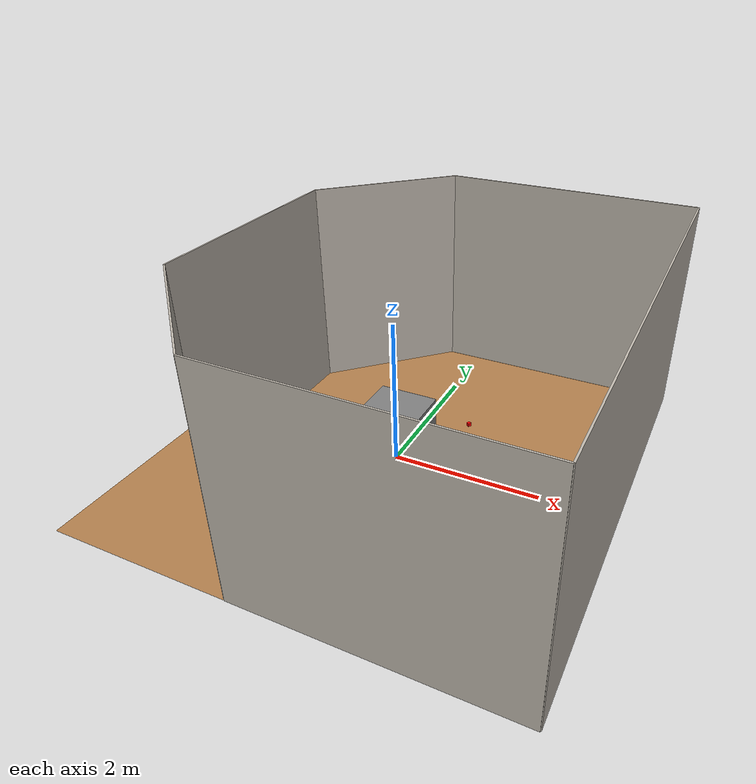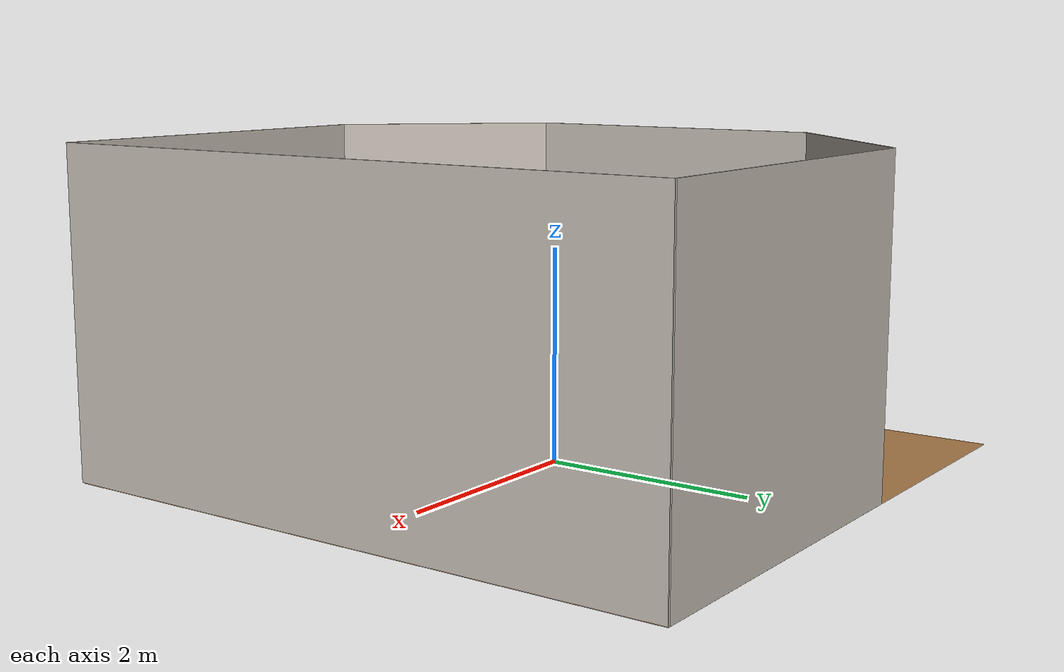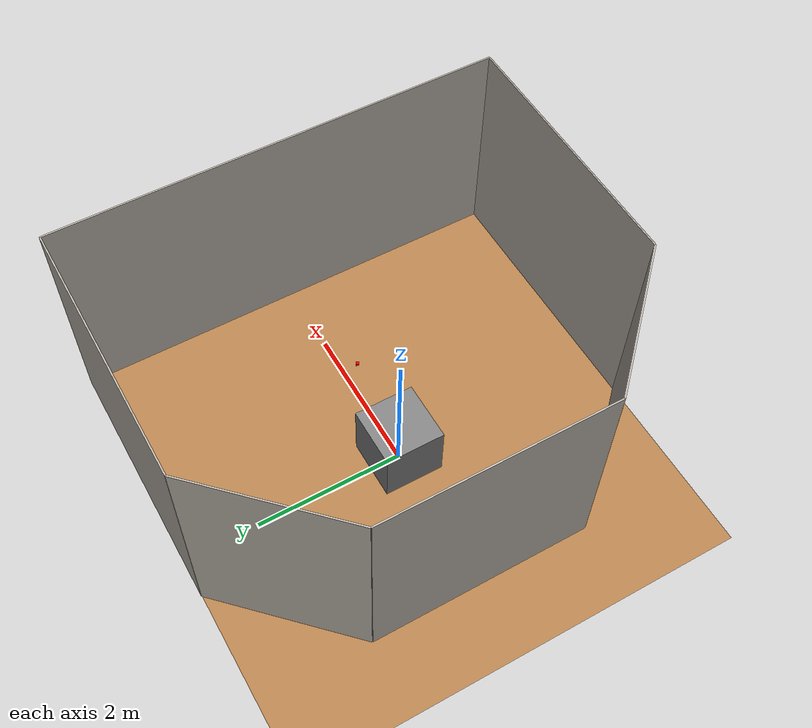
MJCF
<mujoco model="table_arena">
  <asset>
    <texture builtin="gradient" height="256" rgb1=".9 .9 1." rgb2=".2 .3 .4" type="skybox" width="256"/>
    <texture file="../textures/wood-tiles.png" type="2d" name="texplane"/>
    <material name="floorplane" reflectance="0.01" shininess="0.0" specular="0.0" texrepeat="2 2" texture="texplane" texuniform="true"/>
    <!-- ceramic table texture and material-->
    <texture file="../textures/ceramic.png" type="cube" name="tex-ceramic"/>
    <material name="table_ceramic" reflectance="0.0" shininess="0.0" specular="0.2" texrepeat="1 1" texture="tex-ceramic" />
    <!-- steel legs -->
    <texture file="../textures/steel-brushed.png" type="cube" name="tex-steel-brushed"/>
    <material name="table_legs_metal" reflectance="0.8" shininess="0.8" texrepeat="1 1" texture="tex-steel-brushed" />
    <!-- plaster walls -->
    <texture file="../textures/cream-plaster.png" type="2d" name="tex-cream-plaster"/>
    <material name="walls_mat" reflectance="0.0" shininess="0.1" specular="0.1" texrepeat="3 3" texture="tex-cream-plaster" texuniform="true" />
    <!-- added table texture and material for domain randomization -->
    <texture  name="textable" builtin="flat" height="512" width="512" rgb1="0.5 0.5 0.5" rgb2="0.5 0.5 0.5"/>
    <material name="table_mat" texture="textable" />
    <!-- red wood texture and material -->
    <texture file="../textures/red-wood.png" type="cube" name="tex-red-wood"/>
    <material name="red_wood" reflectance="0.0" shininess="0.0" specular="0.2" texrepeat="1 1" texture="tex-red-wood" />

  </asset>
  <worldbody>
    <!-- Floor -->
    <geom condim="3" material="floorplane" name="floor" pos="0 0 0" size="3 3 .125" type="plane"/>
    <geom pos="1.02644919915839158 0.026981029036949163 0.8212085891595892" quat="0.2466311962433762 1.8050747299772946e-07 3.2564219617619293e-07 0.9691094123159794" size="0.020350878171441007 0.020965423737856197 0.020155836830132706" type="box" name="red_cube" rgba="1 0 0 1"/>
    <!-- new_task_relev_obj_pos_goal = [0.09540142 0.04881607 0.82120859]
    new_task_relev_obj_quat_wxyz = [4.18666084e-01 2.36688749e-07 2.87409506e-07 9.08140248e-01] -->
    <!-- new_task_relev_obj_pos_goal = [0.11770748 0.16574985 0.82120859]
    new_task_relev_obj_quat_wxyz = [3.79627672e-01 2.24239372e-07 2.97224649e-07 9.25139357e-01]   -->
    <!-- Walls (visual only) -->
    <geom pos="-1.25 2.25 1.5" quat="0.6532815 0.6532815 0.2705981 0.2705981" size="1.06 1.5 0.01" type="box" conaffinity="0" contype="0" group="1" name="wall_leftcorner_visual" material="walls_mat"/>
    <geom pos="-1.25 -2.25 1.5" quat="0.6532815 0.6532815 -0.2705981 -0.2705981" size="1.06 1.5 0.01" type="box" conaffinity="0" contype="0" group="1" name="wall_rightcorner_visual" material="walls_mat"/>
    <geom pos="1.25 3 1.5" quat="0.7071 0.7071 0 0" size="1.75 1.5 0.01" type="box" conaffinity="0" contype="0" group="1" name="wall_left_visual" material="walls_mat"/>
    <geom pos="1.25 -3 1.5" quat="0.7071 -0.7071 0 0" size="1.75 1.5 0.01" type="box" conaffinity="0" contype="0" group="1" name="wall_right_visual" material="walls_mat"/>
    <geom pos="-2 0 1.5" quat="0.5 0.5 0.5 0.5" size="1.5 1.5 0.01" type="box" conaffinity="0" contype="0" group="1" name="wall_rear_visual" material="walls_mat"/>
    <geom pos="3 0 1.5" quat="0.5 0.5 -0.5 -0.5" size="3 1.5 0.01" type="box" conaffinity="0" contype="0" group="1" name="wall_front_visual" material="walls_mat"/>
    <!-- Table body --> <!-- + 0.05/2 because of the line in table_arena.py
      self.table_top.set(
            "pos", array_to_string(np.array([0, 0, self.table_half_size[2]]))
    ) -->
    <!-- 03/04/24 need to figure out where the robot's base actually is -->
    <!-- 27/03/24 unclear if above is correct because the image generation env doesn't seem to include this update when generating images? -->
    <body name="table" pos="0 0 0.4">
      <geom pos="0 0 0" size="0.4 0.4 0.4" type="box" group="0" name="table_collision" friction="1 0.005 0.0001"/>
      <geom pos="0 0 0" size="0.4 0.4 0.4" type="box" conaffinity="0" contype="0" group="1" name="table_visual" material="table_ceramic"/>
      <site pos="0 0 0.4" name="table_top" size="0.001 0.001 0.001" rgba="0 0 0 0"/>
      <!-- Legs (visual only) -->
      <geom pos="0 0 0" size="0.05 0.1" type="cylinder" conaffinity="0" contype="0" group="1" name="table_leg1_visual" material="table_legs_metal"/>
      <geom pos="0 0 0" size="0.05 0.1" type="cylinder" conaffinity="0" contype="0" group="1" name="table_leg2_visual" material="table_legs_metal"/>
      <geom pos="0 0 0" size="0.05 0.1" type="cylinder" conaffinity="0" contype="0" group="1" name="table_leg3_visual" material="table_legs_metal"/>
      <geom pos="0 0 0" size="0.05 0.1" type="cylinder" conaffinity="0" contype="0" group="1" name="table_leg4_visual" material="table_legs_metal"/>
    </body>

    <light name="light1" diffuse=".8 .8 .8" dir="0 -.15 -1" directional="false" pos="1 1 4.0" specular="0.3 0.3 0.3" castshadow="false"/>
    <light name="light2" diffuse=".8 .8 .8" dir="0 -.15 -1" directional="false" pos="-3. -3. 4.0" specular="0.3 0.3 0.3" castshadow="false"/>
    <!-- front view -->
    <camera mode="fixed" name="frontview" pos="1.6 0 1.45" quat="0.56 0.43 0.43 0.56"/>
    <!-- bird view -->
    <camera mode="fixed" name="birdview" pos="-0.2 0 3.0" quat="0.7071 0 0 0.7071"/>
    <!-- agent view -->
    <camera mode="fixed" name="agentview" pos="0.5 0 1.35" quat="0.653 0.271 0.271 0.653"/>
    <!-- side view -->
    <camera mode="fixed" name="sideview" pos="-0.05651774593317116 1.2761224129427358 1.4879572214102434" quat="0.009905065491771751 0.006877963156909582 0.5912228352893879 0.806418094001364" />
  </worldbody>
</mujoco>
